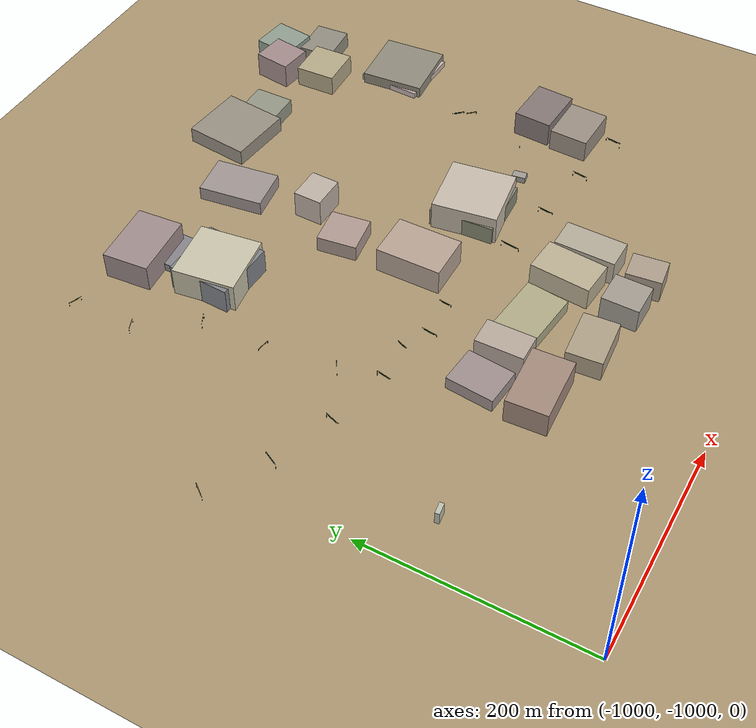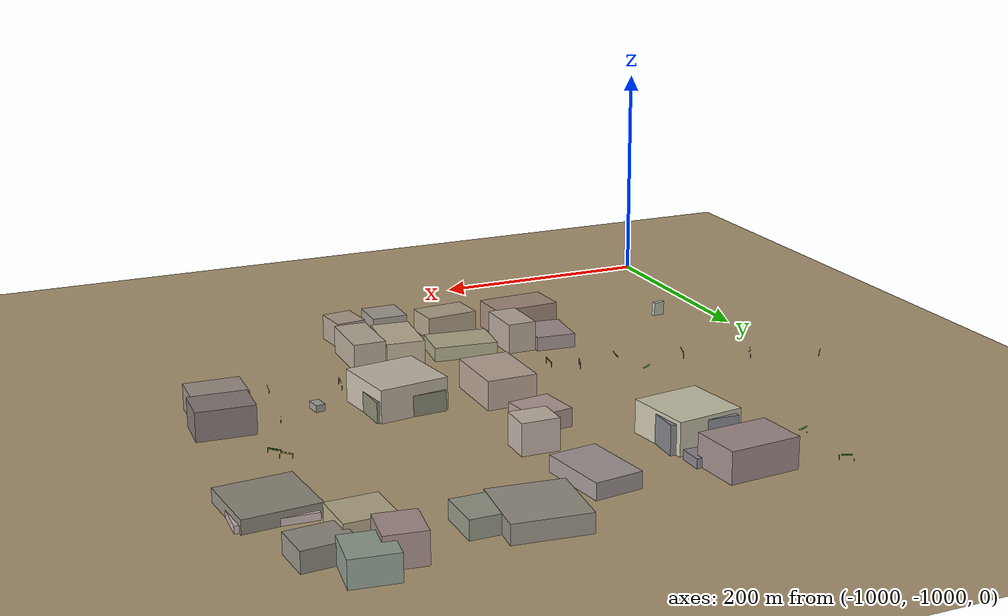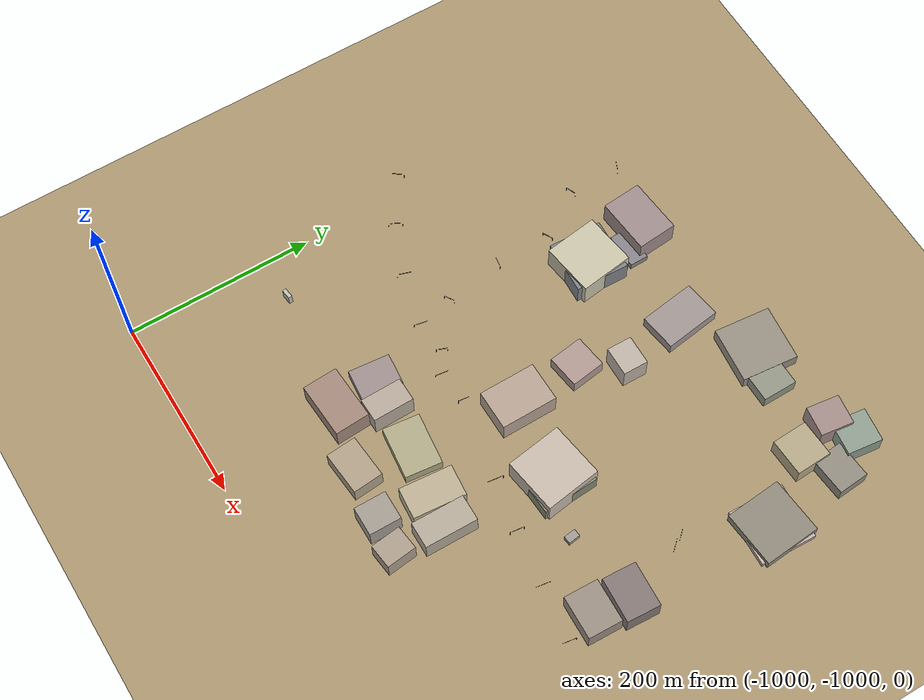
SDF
<sdf version="1.9">
 <world name="crossroad_world">
  <model name="ground_plane">
   <static>true</static>
   <pose>0 0 -0.05 0 0 0</pose>
   <link name="link">
    <collision name="collision">
     <geometry><plane><normal>0 0 1</normal><size>10000 10000</size></plane></geometry>
    </collision>
    <visual name="visual">
     <geometry><plane><normal>0 0 1</normal><size>15000 15000</size></plane></geometry>
     <material><ambient>0.68 0.60 0.45 1</ambient><diffuse>0.68 0.60 0.45 1</diffuse></material>
    </visual>
   </link>
  </model>
  <model name="tl_0">
   <static>true</static>
   <pose>-548.470 -724.925 0 0 0 4.614</pose>
   <link name="link">
    <visual name="pole">
     <pose>0 0 2.750 0 0 0</pose>
     <geometry><cylinder><radius>0.06</radius><length>5.50</length></cylinder></geometry>
     <material><ambient>0.25 0.25 0.25 1</ambient><diffuse>0.25 0.25 0.25 1</diffuse></material>
    </visual>
    <visual name="housing">
     <pose>0 0 5.950 0 0 0</pose>
     <geometry><box><size>0.33 0.33 0.9</size></box></geometry>
     <material><ambient>0.08 0.08 0.08 1</ambient><diffuse>0.08 0.08 0.08 1</diffuse></material>
    </visual>
    <visual name="red">
     <pose>0 0 6.250 0 0 0</pose>
     <geometry><sphere><radius>0.09</radius></sphere></geometry>
     <material>
      <ambient>0.90 0.05 0.05 1</ambient>
      <diffuse>0.90 0.05 0.05 1</diffuse>
      <emissive>0.6 0 0 1</emissive>
     </material>
    </visual>
    <visual name="amber">
     <pose>0 0 5.950 0 0 0</pose>
     <geometry><sphere><radius>0.09</radius></sphere></geometry>
     <material><ambient>0.90 0.55 0.00 1</ambient><diffuse>0.90 0.55 0.00 1</diffuse></material>
    </visual>
    <visual name="green">
     <pose>0 0 5.650 0 0 0</pose>
     <geometry><sphere><radius>0.09</radius></sphere></geometry>
     <material><ambient>0.00 0.78 0.00 1</ambient><diffuse>0.00 0.78 0.00 1</diffuse></material>
    </visual>
    <collision name="col">
     <pose>0 0 2.750 0 0 0</pose>
     <geometry><cylinder><radius>0.06</radius><length>5.50</length></cylinder></geometry>
    </collision>
   </link>
  </model>
  <model name="gantry_8">
   <static>true</static>
   <pose>-913.528 -734.026 0 0 0 4.386</pose>
   <link name="link">
    <visual name="post_l">
     <pose>-7.300 0 2.925 0 0 0</pose>
     <geometry><cylinder><radius>0.1</radius><length>5.85</length></cylinder></geometry>
     <material><ambient>0.30 0.30 0.35 1</ambient><diffuse>0.30 0.30 0.35 1</diffuse></material>
    </visual>
    <visual name="post_r">
     <pose>7.300 0 2.925 0 0 0</pose>
     <geometry><cylinder><radius>0.1</radius><length>5.85</length></cylinder></geometry>
     <material><ambient>0.30 0.30 0.35 1</ambient><diffuse>0.30 0.30 0.35 1</diffuse></material>
    </visual>
    <visual name="beam">
     <pose>0 0 6.000 0 0 0</pose>
     <geometry><box><size>14.600 0.22 0.22</size></box></geometry>
     <material><ambient>0.30 0.30 0.35 1</ambient><diffuse>0.30 0.30 0.35 1</diffuse></material>
    </visual>
    <visual name="sign_border">
     <pose>0 -0.14 5.450 0 0 0</pose>
     <geometry><box><size>10.592 0.04 0.92</size></box></geometry>
     <material><ambient>0.90 0.85 0.10 1</ambient><diffuse>0.90 0.85 0.10 1</diffuse></material>
    </visual>
    <visual name="sign_panel">
     <pose>0 -0.15 5.450 0 0 0</pose>
     <geometry><box><size>10.512 0.05 0.86</size></box></geometry>
     <material><ambient>0.05 0.38 0.10 1</ambient><diffuse>0.05 0.38 0.10 1</diffuse></material>
    </visual>
    <collision name="col_post_l">
     <pose>-7.300 0 2.925 0 0 0</pose>
     <geometry><cylinder><radius>0.1</radius><length>5.85</length></cylinder></geometry>
    </collision>
    <collision name="col_post_r">
     <pose>7.300 0 2.925 0 0 0</pose>
     <geometry><cylinder><radius>0.1</radius><length>5.85</length></cylinder></geometry>
    </collision>
    <collision name="col_beam">
     <pose>0 0 6.000 0 0 0</pose>
     <geometry><box><size>14.600 0.22 0.22</size></box></geometry>
    </collision>
   </link>
  </model>
  <model name="gantry_9">
   <static>true</static>
   <pose>-969.270 -712.010 0 0 0 4.232</pose>
   <link name="link">
    <visual name="post_l">
     <pose>-7.300 0 2.925 0 0 0</pose>
     <geometry><cylinder><radius>0.1</radius><length>5.85</length></cylinder></geometry>
     <material><ambient>0.30 0.30 0.35 1</ambient><diffuse>0.30 0.30 0.35 1</diffuse></material>
    </visual>
    <visual name="post_r">
     <pose>7.300 0 2.925 0 0 0</pose>
     <geometry><cylinder><radius>0.1</radius><length>5.85</length></cylinder></geometry>
     <material><ambient>0.30 0.30 0.35 1</ambient><diffuse>0.30 0.30 0.35 1</diffuse></material>
    </visual>
    <visual name="beam">
     <pose>0 0 6.000 0 0 0</pose>
     <geometry><box><size>14.600 0.22 0.22</size></box></geometry>
     <material><ambient>0.30 0.30 0.35 1</ambient><diffuse>0.30 0.30 0.35 1</diffuse></material>
    </visual>
    <visual name="sign_border">
     <pose>0 -0.14 5.450 0 0 0</pose>
     <geometry><box><size>10.592 0.04 0.92</size></box></geometry>
     <material><ambient>0.90 0.85 0.10 1</ambient><diffuse>0.90 0.85 0.10 1</diffuse></material>
    </visual>
    <visual name="sign_panel">
     <pose>0 -0.15 5.450 0 0 0</pose>
     <geometry><box><size>10.512 0.05 0.86</size></box></geometry>
     <material><ambient>0.05 0.38 0.10 1</ambient><diffuse>0.05 0.38 0.10 1</diffuse></material>
    </visual>
    <collision name="col_post_l">
     <pose>-7.300 0 2.925 0 0 0</pose>
     <geometry><cylinder><radius>0.1</radius><length>5.85</length></cylinder></geometry>
    </collision>
    <collision name="col_post_r">
     <pose>7.300 0 2.925 0 0 0</pose>
     <geometry><cylinder><radius>0.1</radius><length>5.85</length></cylinder></geometry>
    </collision>
    <collision name="col_beam">
     <pose>0 0 6.000 0 0 0</pose>
     <geometry><box><size>14.600 0.22 0.22</size></box></geometry>
    </collision>
   </link>
  </model>
  <model name="gantry_10">
   <static>true</static>
   <pose>-1020.344 -680.705 0 0 0 4.043</pose>
   <link name="link">
    <visual name="post_l">
     <pose>-7.300 0 2.925 0 0 0</pose>
     <geometry><cylinder><radius>0.1</radius><length>5.85</length></cylinder></geometry>
     <material><ambient>0.30 0.30 0.35 1</ambient><diffuse>0.30 0.30 0.35 1</diffuse></material>
    </visual>
    <visual name="post_r">
     <pose>7.300 0 2.925 0 0 0</pose>
     <geometry><cylinder><radius>0.1</radius><length>5.85</length></cylinder></geometry>
     <material><ambient>0.30 0.30 0.35 1</ambient><diffuse>0.30 0.30 0.35 1</diffuse></material>
    </visual>
    <visual name="beam">
     <pose>0 0 6.000 0 0 0</pose>
     <geometry><box><size>14.600 0.22 0.22</size></box></geometry>
     <material><ambient>0.30 0.30 0.35 1</ambient><diffuse>0.30 0.30 0.35 1</diffuse></material>
    </visual>
    <visual name="sign_border">
     <pose>0 -0.14 5.450 0 0 0</pose>
     <geometry><box><size>10.592 0.04 0.92</size></box></geometry>
     <material><ambient>0.90 0.85 0.10 1</ambient><diffuse>0.90 0.85 0.10 1</diffuse></material>
    </visual>
    <visual name="sign_panel">
     <pose>0 -0.15 5.450 0 0 0</pose>
     <geometry><box><size>10.512 0.05 0.86</size></box></geometry>
     <material><ambient>0.05 0.38 0.10 1</ambient><diffuse>0.05 0.38 0.10 1</diffuse></material>
    </visual>
    <collision name="col_post_l">
     <pose>-7.300 0 2.925 0 0 0</pose>
     <geometry><cylinder><radius>0.1</radius><length>5.85</length></cylinder></geometry>
    </collision>
    <collision name="col_post_r">
     <pose>7.300 0 2.925 0 0 0</pose>
     <geometry><cylinder><radius>0.1</radius><length>5.85</length></cylinder></geometry>
    </collision>
    <collision name="col_beam">
     <pose>0 0 6.000 0 0 0</pose>
     <geometry><box><size>14.600 0.22 0.22</size></box></geometry>
    </collision>
   </link>
  </model>
  <model name="gantry_11">
   <static>true</static>
   <pose>-855.269 -748.215 0 0 0 4.518</pose>
   <link name="link">
    <visual name="post_l">
     <pose>-7.300 0 2.925 0 0 0</pose>
     <geometry><cylinder><radius>0.1</radius><length>5.85</length></cylinder></geometry>
     <material><ambient>0.30 0.30 0.35 1</ambient><diffuse>0.30 0.30 0.35 1</diffuse></material>
    </visual>
    <visual name="post_r">
     <pose>7.300 0 2.925 0 0 0</pose>
     <geometry><cylinder><radius>0.1</radius><length>5.85</length></cylinder></geometry>
     <material><ambient>0.30 0.30 0.35 1</ambient><diffuse>0.30 0.30 0.35 1</diffuse></material>
    </visual>
    <visual name="beam">
     <pose>0 0 6.000 0 0 0</pose>
     <geometry><box><size>14.600 0.22 0.22</size></box></geometry>
     <material><ambient>0.30 0.30 0.35 1</ambient><diffuse>0.30 0.30 0.35 1</diffuse></material>
    </visual>
    <visual name="sign_border">
     <pose>0 -0.14 5.450 0 0 0</pose>
     <geometry><box><size>10.592 0.04 0.92</size></box></geometry>
     <material><ambient>0.90 0.85 0.10 1</ambient><diffuse>0.90 0.85 0.10 1</diffuse></material>
    </visual>
    <visual name="sign_panel">
     <pose>0 -0.15 5.450 0 0 0</pose>
     <geometry><box><size>10.512 0.05 0.86</size></box></geometry>
     <material><ambient>0.05 0.38 0.10 1</ambient><diffuse>0.05 0.38 0.10 1</diffuse></material>
    </visual>
    <collision name="col_post_l">
     <pose>-7.300 0 2.925 0 0 0</pose>
     <geometry><cylinder><radius>0.1</radius><length>5.85</length></cylinder></geometry>
    </collision>
    <collision name="col_post_r">
     <pose>7.300 0 2.925 0 0 0</pose>
     <geometry><cylinder><radius>0.1</radius><length>5.85</length></cylinder></geometry>
    </collision>
    <collision name="col_beam">
     <pose>0 0 6.000 0 0 0</pose>
     <geometry><box><size>14.600 0.22 0.22</size></box></geometry>
    </collision>
   </link>
  </model>
  <model name="gantry_12">
   <static>true</static>
   <pose>-796.123 -758.223 0 0 0 4.583</pose>
   <link name="link">
    <visual name="post_l">
     <pose>-7.300 0 2.925 0 0 0</pose>
     <geometry><cylinder><radius>0.1</radius><length>5.85</length></cylinder></geometry>
     <material><ambient>0.30 0.30 0.35 1</ambient><diffuse>0.30 0.30 0.35 1</diffuse></material>
    </visual>
    <visual name="post_r">
     <pose>7.300 0 2.925 0 0 0</pose>
     <geometry><cylinder><radius>0.1</radius><length>5.85</length></cylinder></geometry>
     <material><ambient>0.30 0.30 0.35 1</ambient><diffuse>0.30 0.30 0.35 1</diffuse></material>
    </visual>
    <visual name="beam">
     <pose>0 0 6.000 0 0 0</pose>
     <geometry><box><size>14.600 0.22 0.22</size></box></geometry>
     <material><ambient>0.30 0.30 0.35 1</ambient><diffuse>0.30 0.30 0.35 1</diffuse></material>
    </visual>
    <visual name="sign_border">
     <pose>0 -0.14 5.450 0 0 0</pose>
     <geometry><box><size>10.592 0.04 0.92</size></box></geometry>
     <material><ambient>0.90 0.85 0.10 1</ambient><diffuse>0.90 0.85 0.10 1</diffuse></material>
    </visual>
    <visual name="sign_panel">
     <pose>0 -0.15 5.450 0 0 0</pose>
     <geometry><box><size>10.512 0.05 0.86</size></box></geometry>
     <material><ambient>0.05 0.38 0.10 1</ambient><diffuse>0.05 0.38 0.10 1</diffuse></material>
    </visual>
    <collision name="col_post_l">
     <pose>-7.300 0 2.925 0 0 0</pose>
     <geometry><cylinder><radius>0.1</radius><length>5.85</length></cylinder></geometry>
    </collision>
    <collision name="col_post_r">
     <pose>7.300 0 2.925 0 0 0</pose>
     <geometry><cylinder><radius>0.1</radius><length>5.85</length></cylinder></geometry>
    </collision>
    <collision name="col_beam">
     <pose>0 0 6.000 0 0 0</pose>
     <geometry><box><size>14.600 0.22 0.22</size></box></geometry>
    </collision>
   </link>
  </model>
  <model name="gantry_15">
   <static>true</static>
   <pose>-819.336 -745.091 0 0 0 4.353</pose>
   <link name="link">
    <visual name="post_l">
     <pose>-5.700 0 2.925 0 0 0</pose>
     <geometry><cylinder><radius>0.1</radius><length>5.85</length></cylinder></geometry>
     <material><ambient>0.30 0.30 0.35 1</ambient><diffuse>0.30 0.30 0.35 1</diffuse></material>
    </visual>
    <visual name="post_r">
     <pose>5.700 0 2.925 0 0 0</pose>
     <geometry><cylinder><radius>0.1</radius><length>5.85</length></cylinder></geometry>
     <material><ambient>0.30 0.30 0.35 1</ambient><diffuse>0.30 0.30 0.35 1</diffuse></material>
    </visual>
    <visual name="beam">
     <pose>0 0 6.000 0 0 0</pose>
     <geometry><box><size>11.400 0.22 0.22</size></box></geometry>
     <material><ambient>0.30 0.30 0.35 1</ambient><diffuse>0.30 0.30 0.35 1</diffuse></material>
    </visual>
    <visual name="sign_border">
     <pose>0 -0.14 5.450 0 0 0</pose>
     <geometry><box><size>8.288 0.04 0.92</size></box></geometry>
     <material><ambient>0.90 0.85 0.10 1</ambient><diffuse>0.90 0.85 0.10 1</diffuse></material>
    </visual>
    <visual name="sign_panel">
     <pose>0 -0.15 5.450 0 0 0</pose>
     <geometry><box><size>8.208 0.05 0.86</size></box></geometry>
     <material><ambient>0.05 0.38 0.10 1</ambient><diffuse>0.05 0.38 0.10 1</diffuse></material>
    </visual>
    <collision name="col_post_l">
     <pose>-5.700 0 2.925 0 0 0</pose>
     <geometry><cylinder><radius>0.1</radius><length>5.85</length></cylinder></geometry>
    </collision>
    <collision name="col_post_r">
     <pose>5.700 0 2.925 0 0 0</pose>
     <geometry><cylinder><radius>0.1</radius><length>5.85</length></cylinder></geometry>
    </collision>
    <collision name="col_beam">
     <pose>0 0 6.000 0 0 0</pose>
     <geometry><box><size>11.400 0.22 0.22</size></box></geometry>
    </collision>
   </link>
  </model>
  <model name="gantry_16">
   <static>true</static>
   <pose>-864.959 -709.529 0 0 0 3.697</pose>
   <link name="link">
    <visual name="post_l">
     <pose>-5.700 0 2.925 0 0 0</pose>
     <geometry><cylinder><radius>0.1</radius><length>5.85</length></cylinder></geometry>
     <material><ambient>0.30 0.30 0.35 1</ambient><diffuse>0.30 0.30 0.35 1</diffuse></material>
    </visual>
    <visual name="post_r">
     <pose>5.700 0 2.925 0 0 0</pose>
     <geometry><cylinder><radius>0.1</radius><length>5.85</length></cylinder></geometry>
     <material><ambient>0.30 0.30 0.35 1</ambient><diffuse>0.30 0.30 0.35 1</diffuse></material>
    </visual>
    <visual name="beam">
     <pose>0 0 6.000 0 0 0</pose>
     <geometry><box><size>11.400 0.22 0.22</size></box></geometry>
     <material><ambient>0.30 0.30 0.35 1</ambient><diffuse>0.30 0.30 0.35 1</diffuse></material>
    </visual>
    <visual name="sign_border">
     <pose>0 -0.14 5.450 0 0 0</pose>
     <geometry><box><size>8.288 0.04 0.92</size></box></geometry>
     <material><ambient>0.90 0.85 0.10 1</ambient><diffuse>0.90 0.85 0.10 1</diffuse></material>
    </visual>
    <visual name="sign_panel">
     <pose>0 -0.15 5.450 0 0 0</pose>
     <geometry><box><size>8.208 0.05 0.86</size></box></geometry>
     <material><ambient>0.05 0.38 0.10 1</ambient><diffuse>0.05 0.38 0.10 1</diffuse></material>
    </visual>
    <collision name="col_post_l">
     <pose>-5.700 0 2.925 0 0 0</pose>
     <geometry><cylinder><radius>0.1</radius><length>5.85</length></cylinder></geometry>
    </collision>
    <collision name="col_post_r">
     <pose>5.700 0 2.925 0 0 0</pose>
     <geometry><cylinder><radius>0.1</radius><length>5.85</length></cylinder></geometry>
    </collision>
    <collision name="col_beam">
     <pose>0 0 6.000 0 0 0</pose>
     <geometry><box><size>11.400 0.22 0.22</size></box></geometry>
    </collision>
   </link>
  </model>
  <model name="gantry_17">
   <static>true</static>
   <pose>-760.744 -754.867 0 0 0 4.594</pose>
   <link name="link">
    <visual name="post_l">
     <pose>-5.700 0 2.925 0 0 0</pose>
     <geometry><cylinder><radius>0.1</radius><length>5.85</length></cylinder></geometry>
     <material><ambient>0.30 0.30 0.35 1</ambient><diffuse>0.30 0.30 0.35 1</diffuse></material>
    </visual>
    <visual name="post_r">
     <pose>5.700 0 2.925 0 0 0</pose>
     <geometry><cylinder><radius>0.1</radius><length>5.85</length></cylinder></geometry>
     <material><ambient>0.30 0.30 0.35 1</ambient><diffuse>0.30 0.30 0.35 1</diffuse></material>
    </visual>
    <visual name="beam">
     <pose>0 0 6.000 0 0 0</pose>
     <geometry><box><size>11.400 0.22 0.22</size></box></geometry>
     <material><ambient>0.30 0.30 0.35 1</ambient><diffuse>0.30 0.30 0.35 1</diffuse></material>
    </visual>
    <visual name="sign_border">
     <pose>0 -0.14 5.450 0 0 0</pose>
     <geometry><box><size>8.288 0.04 0.92</size></box></geometry>
     <material><ambient>0.90 0.85 0.10 1</ambient><diffuse>0.90 0.85 0.10 1</diffuse></material>
    </visual>
    <visual name="sign_panel">
     <pose>0 -0.15 5.450 0 0 0</pose>
     <geometry><box><size>8.208 0.05 0.86</size></box></geometry>
     <material><ambient>0.05 0.38 0.10 1</ambient><diffuse>0.05 0.38 0.10 1</diffuse></material>
    </visual>
    <collision name="col_post_l">
     <pose>-5.700 0 2.925 0 0 0</pose>
     <geometry><cylinder><radius>0.1</radius><length>5.85</length></cylinder></geometry>
    </collision>
    <collision name="col_post_r">
     <pose>5.700 0 2.925 0 0 0</pose>
     <geometry><cylinder><radius>0.1</radius><length>5.85</length></cylinder></geometry>
    </collision>
    <collision name="col_beam">
     <pose>0 0 6.000 0 0 0</pose>
     <geometry><box><size>11.400 0.22 0.22</size></box></geometry>
    </collision>
   </link>
  </model>
  <model name="gantry_18">
   <static>true</static>
   <pose>-908.334 -536.574 0 0 0 3.521</pose>
   <link name="link">
    <visual name="post_l">
     <pose>-5.700 0 2.925 0 0 0</pose>
     <geometry><cylinder><radius>0.1</radius><length>5.85</length></cylinder></geometry>
     <material><ambient>0.30 0.30 0.35 1</ambient><diffuse>0.30 0.30 0.35 1</diffuse></material>
    </visual>
    <visual name="post_r">
     <pose>5.700 0 2.925 0 0 0</pose>
     <geometry><cylinder><radius>0.1</radius><length>5.85</length></cylinder></geometry>
     <material><ambient>0.30 0.30 0.35 1</ambient><diffuse>0.30 0.30 0.35 1</diffuse></material>
    </visual>
    <visual name="beam">
     <pose>0 0 6.000 0 0 0</pose>
     <geometry><box><size>11.400 0.22 0.22</size></box></geometry>
     <material><ambient>0.30 0.30 0.35 1</ambient><diffuse>0.30 0.30 0.35 1</diffuse></material>
    </visual>
    <visual name="sign_border">
     <pose>0 -0.14 5.450 0 0 0</pose>
     <geometry><box><size>8.288 0.04 0.92</size></box></geometry>
     <material><ambient>0.90 0.85 0.10 1</ambient><diffuse>0.90 0.85 0.10 1</diffuse></material>
    </visual>
    <visual name="sign_panel">
     <pose>0 -0.15 5.450 0 0 0</pose>
     <geometry><box><size>8.208 0.05 0.86</size></box></geometry>
     <material><ambient>0.05 0.38 0.10 1</ambient><diffuse>0.05 0.38 0.10 1</diffuse></material>
    </visual>
    <collision name="col_post_l">
     <pose>-5.700 0 2.925 0 0 0</pose>
     <geometry><cylinder><radius>0.1</radius><length>5.85</length></cylinder></geometry>
    </collision>
    <collision name="col_post_r">
     <pose>5.700 0 2.925 0 0 0</pose>
     <geometry><cylinder><radius>0.1</radius><length>5.85</length></cylinder></geometry>
    </collision>
    <collision name="col_beam">
     <pose>0 0 6.000 0 0 0</pose>
     <geometry><box><size>11.400 0.22 0.22</size></box></geometry>
    </collision>
   </link>
  </model>
  <model name="gantry_19">
   <static>true</static>
   <pose>-908.919 -479.412 0 0 0 2.751</pose>
   <link name="link">
    <visual name="post_l">
     <pose>-5.700 0 2.925 0 0 0</pose>
     <geometry><cylinder><radius>0.1</radius><length>5.85</length></cylinder></geometry>
     <material><ambient>0.30 0.30 0.35 1</ambient><diffuse>0.30 0.30 0.35 1</diffuse></material>
    </visual>
    <visual name="post_r">
     <pose>5.700 0 2.925 0 0 0</pose>
     <geometry><cylinder><radius>0.1</radius><length>5.85</length></cylinder></geometry>
     <material><ambient>0.30 0.30 0.35 1</ambient><diffuse>0.30 0.30 0.35 1</diffuse></material>
    </visual>
    <visual name="beam">
     <pose>0 0 6.000 0 0 0</pose>
     <geometry><box><size>11.400 0.22 0.22</size></box></geometry>
     <material><ambient>0.30 0.30 0.35 1</ambient><diffuse>0.30 0.30 0.35 1</diffuse></material>
    </visual>
    <visual name="sign_border">
     <pose>0 -0.14 5.450 0 0 0</pose>
     <geometry><box><size>8.288 0.04 0.92</size></box></geometry>
     <material><ambient>0.90 0.85 0.10 1</ambient><diffuse>0.90 0.85 0.10 1</diffuse></material>
    </visual>
    <visual name="sign_panel">
     <pose>0 -0.15 5.450 0 0 0</pose>
     <geometry><box><size>8.208 0.05 0.86</size></box></geometry>
     <material><ambient>0.05 0.38 0.10 1</ambient><diffuse>0.05 0.38 0.10 1</diffuse></material>
    </visual>
    <collision name="col_post_l">
     <pose>-5.700 0 2.925 0 0 0</pose>
     <geometry><cylinder><radius>0.1</radius><length>5.85</length></cylinder></geometry>
    </collision>
    <collision name="col_post_r">
     <pose>5.700 0 2.925 0 0 0</pose>
     <geometry><cylinder><radius>0.1</radius><length>5.85</length></cylinder></geometry>
    </collision>
    <collision name="col_beam">
     <pose>0 0 6.000 0 0 0</pose>
     <geometry><box><size>11.400 0.22 0.22</size></box></geometry>
    </collision>
   </link>
  </model>
  <model name="gantry_21">
   <static>true</static>
   <pose>-874.985 -585.997 0 0 0 3.599</pose>
   <link name="link">
    <visual name="post_l">
     <pose>-5.700 0 2.925 0 0 0</pose>
     <geometry><cylinder><radius>0.1</radius><length>5.85</length></cylinder></geometry>
     <material><ambient>0.30 0.30 0.35 1</ambient><diffuse>0.30 0.30 0.35 1</diffuse></material>
    </visual>
    <visual name="post_r">
     <pose>5.700 0 2.925 0 0 0</pose>
     <geometry><cylinder><radius>0.1</radius><length>5.85</length></cylinder></geometry>
     <material><ambient>0.30 0.30 0.35 1</ambient><diffuse>0.30 0.30 0.35 1</diffuse></material>
    </visual>
    <visual name="beam">
     <pose>0 0 6.000 0 0 0</pose>
     <geometry><box><size>11.400 0.22 0.22</size></box></geometry>
     <material><ambient>0.30 0.30 0.35 1</ambient><diffuse>0.30 0.30 0.35 1</diffuse></material>
    </visual>
    <visual name="sign_border">
     <pose>0 -0.14 5.450 0 0 0</pose>
     <geometry><box><size>8.288 0.04 0.92</size></box></geometry>
     <material><ambient>0.90 0.85 0.10 1</ambient><diffuse>0.90 0.85 0.10 1</diffuse></material>
    </visual>
    <visual name="sign_panel">
     <pose>0 -0.15 5.450 0 0 0</pose>
     <geometry><box><size>8.208 0.05 0.86</size></box></geometry>
     <material><ambient>0.05 0.38 0.10 1</ambient><diffuse>0.05 0.38 0.10 1</diffuse></material>
    </visual>
    <collision name="col_post_l">
     <pose>-5.700 0 2.925 0 0 0</pose>
     <geometry><cylinder><radius>0.1</radius><length>5.85</length></cylinder></geometry>
    </collision>
    <collision name="col_post_r">
     <pose>5.700 0 2.925 0 0 0</pose>
     <geometry><cylinder><radius>0.1</radius><length>5.85</length></cylinder></geometry>
    </collision>
    <collision name="col_beam">
     <pose>0 0 6.000 0 0 0</pose>
     <geometry><box><size>11.400 0.22 0.22</size></box></geometry>
    </collision>
   </link>
  </model>
  <model name="gantry_22">
   <static>true</static>
   <pose>-875.183 -645.707 0 0 0 2.982</pose>
   <link name="link">
    <visual name="post_l">
     <pose>-5.700 0 2.925 0 0 0</pose>
     <geometry><cylinder><radius>0.1</radius><length>5.85</length></cylinder></geometry>
     <material><ambient>0.30 0.30 0.35 1</ambient><diffuse>0.30 0.30 0.35 1</diffuse></material>
    </visual>
    <visual name="post_r">
     <pose>5.700 0 2.925 0 0 0</pose>
     <geometry><cylinder><radius>0.1</radius><length>5.85</length></cylinder></geometry>
     <material><ambient>0.30 0.30 0.35 1</ambient><diffuse>0.30 0.30 0.35 1</diffuse></material>
    </visual>
    <visual name="beam">
     <pose>0 0 6.000 0 0 0</pose>
     <geometry><box><size>11.400 0.22 0.22</size></box></geometry>
     <material><ambient>0.30 0.30 0.35 1</ambient><diffuse>0.30 0.30 0.35 1</diffuse></material>
    </visual>
    <visual name="sign_border">
     <pose>0 -0.14 5.450 0 0 0</pose>
     <geometry><box><size>8.288 0.04 0.92</size></box></geometry>
     <material><ambient>0.90 0.85 0.10 1</ambient><diffuse>0.90 0.85 0.10 1</diffuse></material>
    </visual>
    <visual name="sign_panel">
     <pose>0 -0.15 5.450 0 0 0</pose>
     <geometry><box><size>8.208 0.05 0.86</size></box></geometry>
     <material><ambient>0.05 0.38 0.10 1</ambient><diffuse>0.05 0.38 0.10 1</diffuse></material>
    </visual>
    <collision name="col_post_l">
     <pose>-5.700 0 2.925 0 0 0</pose>
     <geometry><cylinder><radius>0.1</radius><length>5.85</length></cylinder></geometry>
    </collision>
    <collision name="col_post_r">
     <pose>5.700 0 2.925 0 0 0</pose>
     <geometry><cylinder><radius>0.1</radius><length>5.85</length></cylinder></geometry>
    </collision>
    <collision name="col_beam">
     <pose>0 0 6.000 0 0 0</pose>
     <geometry><box><size>11.400 0.22 0.22</size></box></geometry>
    </collision>
   </link>
  </model>
  <model name="gantry_51">
   <static>true</static>
   <pose>-531.166 -651.390 0 0 0 -0.824</pose>
   <link name="link">
    <visual name="post_l">
     <pose>-5.700 0 2.925 0 0 0</pose>
     <geometry><cylinder><radius>0.1</radius><length>5.85</length></cylinder></geometry>
     <material><ambient>0.30 0.30 0.35 1</ambient><diffuse>0.30 0.30 0.35 1</diffuse></material>
    </visual>
    <visual name="post_r">
     <pose>5.700 0 2.925 0 0 0</pose>
     <geometry><cylinder><radius>0.1</radius><length>5.85</length></cylinder></geometry>
     <material><ambient>0.30 0.30 0.35 1</ambient><diffuse>0.30 0.30 0.35 1</diffuse></material>
    </visual>
    <visual name="beam">
     <pose>0 0 6.000 0 0 0</pose>
     <geometry><box><size>11.400 0.22 0.22</size></box></geometry>
     <material><ambient>0.30 0.30 0.35 1</ambient><diffuse>0.30 0.30 0.35 1</diffuse></material>
    </visual>
    <visual name="sign_border">
     <pose>0 -0.14 5.450 0 0 0</pose>
     <geometry><box><size>8.288 0.04 0.92</size></box></geometry>
     <material><ambient>0.90 0.85 0.10 1</ambient><diffuse>0.90 0.85 0.10 1</diffuse></material>
    </visual>
    <visual name="sign_panel">
     <pose>0 -0.15 5.450 0 0 0</pose>
     <geometry><box><size>8.208 0.05 0.86</size></box></geometry>
     <material><ambient>0.05 0.38 0.10 1</ambient><diffuse>0.05 0.38 0.10 1</diffuse></material>
    </visual>
    <collision name="col_post_l">
     <pose>-5.700 0 2.925 0 0 0</pose>
     <geometry><cylinder><radius>0.1</radius><length>5.85</length></cylinder></geometry>
    </collision>
    <collision name="col_post_r">
     <pose>5.700 0 2.925 0 0 0</pose>
     <geometry><cylinder><radius>0.1</radius><length>5.85</length></cylinder></geometry>
    </collision>
    <collision name="col_beam">
     <pose>0 0 6.000 0 0 0</pose>
     <geometry><box><size>11.400 0.22 0.22</size></box></geometry>
    </collision>
   </link>
  </model>
  <model name="gantry_56">
   <static>true</static>
   <pose>-525.236 -661.891 0 0 0 2.315</pose>
   <link name="link">
    <visual name="post_l">
     <pose>-5.700 0 2.925 0 0 0</pose>
     <geometry><cylinder><radius>0.1</radius><length>5.85</length></cylinder></geometry>
     <material><ambient>0.30 0.30 0.35 1</ambient><diffuse>0.30 0.30 0.35 1</diffuse></material>
    </visual>
    <visual name="post_r">
     <pose>5.700 0 2.925 0 0 0</pose>
     <geometry><cylinder><radius>0.1</radius><length>5.85</length></cylinder></geometry>
     <material><ambient>0.30 0.30 0.35 1</ambient><diffuse>0.30 0.30 0.35 1</diffuse></material>
    </visual>
    <visual name="beam">
     <pose>0 0 6.000 0 0 0</pose>
     <geometry><box><size>11.400 0.22 0.22</size></box></geometry>
     <material><ambient>0.30 0.30 0.35 1</ambient><diffuse>0.30 0.30 0.35 1</diffuse></material>
    </visual>
    <visual name="sign_border">
     <pose>0 -0.14 5.450 0 0 0</pose>
     <geometry><box><size>8.288 0.04 0.92</size></box></geometry>
     <material><ambient>0.90 0.85 0.10 1</ambient><diffuse>0.90 0.85 0.10 1</diffuse></material>
    </visual>
    <visual name="sign_panel">
     <pose>0 -0.15 5.450 0 0 0</pose>
     <geometry><box><size>8.208 0.05 0.86</size></box></geometry>
     <material><ambient>0.05 0.38 0.10 1</ambient><diffuse>0.05 0.38 0.10 1</diffuse></material>
    </visual>
    <collision name="col_post_l">
     <pose>-5.700 0 2.925 0 0 0</pose>
     <geometry><cylinder><radius>0.1</radius><length>5.85</length></cylinder></geometry>
    </collision>
    <collision name="col_post_r">
     <pose>5.700 0 2.925 0 0 0</pose>
     <geometry><cylinder><radius>0.1</radius><length>5.85</length></cylinder></geometry>
    </collision>
    <collision name="col_beam">
     <pose>0 0 6.000 0 0 0</pose>
     <geometry><box><size>11.400 0.22 0.22</size></box></geometry>
    </collision>
   </link>
  </model>
  <model name="gantry_111">
   <static>true</static>
   <pose>-556.635 -790.196 0 0 0 4.571</pose>
   <link name="link">
    <visual name="post_l">
     <pose>-7.300 0 2.925 0 0 0</pose>
     <geometry><cylinder><radius>0.1</radius><length>5.85</length></cylinder></geometry>
     <material><ambient>0.30 0.30 0.35 1</ambient><diffuse>0.30 0.30 0.35 1</diffuse></material>
    </visual>
    <visual name="post_r">
     <pose>7.300 0 2.925 0 0 0</pose>
     <geometry><cylinder><radius>0.1</radius><length>5.85</length></cylinder></geometry>
     <material><ambient>0.30 0.30 0.35 1</ambient><diffuse>0.30 0.30 0.35 1</diffuse></material>
    </visual>
    <visual name="beam">
     <pose>0 0 6.000 0 0 0</pose>
     <geometry><box><size>14.600 0.22 0.22</size></box></geometry>
     <material><ambient>0.30 0.30 0.35 1</ambient><diffuse>0.30 0.30 0.35 1</diffuse></material>
    </visual>
    <visual name="sign_border">
     <pose>0 -0.14 5.450 0 0 0</pose>
     <geometry><box><size>10.592 0.04 0.92</size></box></geometry>
     <material><ambient>0.90 0.85 0.10 1</ambient><diffuse>0.90 0.85 0.10 1</diffuse></material>
    </visual>
    <visual name="sign_panel">
     <pose>0 -0.15 5.450 0 0 0</pose>
     <geometry><box><size>10.512 0.05 0.86</size></box></geometry>
     <material><ambient>0.05 0.38 0.10 1</ambient><diffuse>0.05 0.38 0.10 1</diffuse></material>
    </visual>
    <collision name="col_post_l">
     <pose>-7.300 0 2.925 0 0 0</pose>
     <geometry><cylinder><radius>0.1</radius><length>5.85</length></cylinder></geometry>
    </collision>
    <collision name="col_post_r">
     <pose>7.300 0 2.925 0 0 0</pose>
     <geometry><cylinder><radius>0.1</radius><length>5.85</length></cylinder></geometry>
    </collision>
    <collision name="col_beam">
     <pose>0 0 6.000 0 0 0</pose>
     <geometry><box><size>14.600 0.22 0.22</size></box></geometry>
    </collision>
   </link>
  </model>
  <model name="gantry_112">
   <static>true</static>
   <pose>-616.089 -782.119 0 0 0 4.579</pose>
   <link name="link">
    <visual name="post_l">
     <pose>-7.300 0 2.925 0 0 0</pose>
     <geometry><cylinder><radius>0.1</radius><length>5.85</length></cylinder></geometry>
     <material><ambient>0.30 0.30 0.35 1</ambient><diffuse>0.30 0.30 0.35 1</diffuse></material>
    </visual>
    <visual name="post_r">
     <pose>7.300 0 2.925 0 0 0</pose>
     <geometry><cylinder><radius>0.1</radius><length>5.85</length></cylinder></geometry>
     <material><ambient>0.30 0.30 0.35 1</ambient><diffuse>0.30 0.30 0.35 1</diffuse></material>
    </visual>
    <visual name="beam">
     <pose>0 0 6.000 0 0 0</pose>
     <geometry><box><size>14.600 0.22 0.22</size></box></geometry>
     <material><ambient>0.30 0.30 0.35 1</ambient><diffuse>0.30 0.30 0.35 1</diffuse></material>
    </visual>
    <visual name="sign_border">
     <pose>0 -0.14 5.450 0 0 0</pose>
     <geometry><box><size>10.592 0.04 0.92</size></box></geometry>
     <material><ambient>0.90 0.85 0.10 1</ambient><diffuse>0.90 0.85 0.10 1</diffuse></material>
    </visual>
    <visual name="sign_panel">
     <pose>0 -0.15 5.450 0 0 0</pose>
     <geometry><box><size>10.512 0.05 0.86</size></box></geometry>
     <material><ambient>0.05 0.38 0.10 1</ambient><diffuse>0.05 0.38 0.10 1</diffuse></material>
    </visual>
    <collision name="col_post_l">
     <pose>-7.300 0 2.925 0 0 0</pose>
     <geometry><cylinder><radius>0.1</radius><length>5.85</length></cylinder></geometry>
    </collision>
    <collision name="col_post_r">
     <pose>7.300 0 2.925 0 0 0</pose>
     <geometry><cylinder><radius>0.1</radius><length>5.85</length></cylinder></geometry>
    </collision>
    <collision name="col_beam">
     <pose>0 0 6.000 0 0 0</pose>
     <geometry><box><size>14.600 0.22 0.22</size></box></geometry>
    </collision>
   </link>
  </model>
  <model name="gantry_113">
   <static>true</static>
   <pose>-497.234 -798.650 0 0 0 4.571</pose>
   <link name="link">
    <visual name="post_l">
     <pose>-7.300 0 2.925 0 0 0</pose>
     <geometry><cylinder><radius>0.1</radius><length>5.85</length></cylinder></geometry>
     <material><ambient>0.30 0.30 0.35 1</ambient><diffuse>0.30 0.30 0.35 1</diffuse></material>
    </visual>
    <visual name="post_r">
     <pose>7.300 0 2.925 0 0 0</pose>
     <geometry><cylinder><radius>0.1</radius><length>5.85</length></cylinder></geometry>
     <material><ambient>0.30 0.30 0.35 1</ambient><diffuse>0.30 0.30 0.35 1</diffuse></material>
    </visual>
    <visual name="beam">
     <pose>0 0 6.000 0 0 0</pose>
     <geometry><box><size>14.600 0.22 0.22</size></box></geometry>
     <material><ambient>0.30 0.30 0.35 1</ambient><diffuse>0.30 0.30 0.35 1</diffuse></material>
    </visual>
    <visual name="sign_border">
     <pose>0 -0.14 5.450 0 0 0</pose>
     <geometry><box><size>10.592 0.04 0.92</size></box></geometry>
     <material><ambient>0.90 0.85 0.10 1</ambient><diffuse>0.90 0.85 0.10 1</diffuse></material>
    </visual>
    <visual name="sign_panel">
     <pose>0 -0.15 5.450 0 0 0</pose>
     <geometry><box><size>10.512 0.05 0.86</size></box></geometry>
     <material><ambient>0.05 0.38 0.10 1</ambient><diffuse>0.05 0.38 0.10 1</diffuse></material>
    </visual>
    <collision name="col_post_l">
     <pose>-7.300 0 2.925 0 0 0</pose>
     <geometry><cylinder><radius>0.1</radius><length>5.85</length></cylinder></geometry>
    </collision>
    <collision name="col_post_r">
     <pose>7.300 0 2.925 0 0 0</pose>
     <geometry><cylinder><radius>0.1</radius><length>5.85</length></cylinder></geometry>
    </collision>
    <collision name="col_beam">
     <pose>0 0 6.000 0 0 0</pose>
     <geometry><box><size>14.600 0.22 0.22</size></box></geometry>
    </collision>
   </link>
  </model>
  <model name="gantry_114">
   <static>true</static>
   <pose>-671.698 -773.069 0 0 0 4.580</pose>
   <link name="link">
    <visual name="post_l">
     <pose>-8.900 0 2.925 0 0 0</pose>
     <geometry><cylinder><radius>0.1</radius><length>5.85</length></cylinder></geometry>
     <material><ambient>0.30 0.30 0.35 1</ambient><diffuse>0.30 0.30 0.35 1</diffuse></material>
    </visual>
    <visual name="post_r">
     <pose>8.900 0 2.925 0 0 0</pose>
     <geometry><cylinder><radius>0.1</radius><length>5.85</length></cylinder></geometry>
     <material><ambient>0.30 0.30 0.35 1</ambient><diffuse>0.30 0.30 0.35 1</diffuse></material>
    </visual>
    <visual name="beam">
     <pose>0 0 6.000 0 0 0</pose>
     <geometry><box><size>17.800 0.22 0.22</size></box></geometry>
     <material><ambient>0.30 0.30 0.35 1</ambient><diffuse>0.30 0.30 0.35 1</diffuse></material>
    </visual>
    <visual name="sign_border">
     <pose>0 -0.14 5.450 0 0 0</pose>
     <geometry><box><size>12.896 0.04 0.92</size></box></geometry>
     <material><ambient>0.90 0.85 0.10 1</ambient><diffuse>0.90 0.85 0.10 1</diffuse></material>
    </visual>
    <visual name="sign_panel">
     <pose>0 -0.15 5.450 0 0 0</pose>
     <geometry><box><size>12.816 0.05 0.86</size></box></geometry>
     <material><ambient>0.05 0.38 0.10 1</ambient><diffuse>0.05 0.38 0.10 1</diffuse></material>
    </visual>
    <collision name="col_post_l">
     <pose>-8.900 0 2.925 0 0 0</pose>
     <geometry><cylinder><radius>0.1</radius><length>5.85</length></cylinder></geometry>
    </collision>
    <collision name="col_post_r">
     <pose>8.900 0 2.925 0 0 0</pose>
     <geometry><cylinder><radius>0.1</radius><length>5.85</length></cylinder></geometry>
    </collision>
    <collision name="col_beam">
     <pose>0 0 6.000 0 0 0</pose>
     <geometry><box><size>17.800 0.22 0.22</size></box></geometry>
    </collision>
   </link>
  </model>
  <model name="building_226">
   <static>true</static>
   <pose>-553.159 -465.575 12.452 0 0 -0.135</pose>
   <link name="link">
    <visual name="body">
     <geometry><box><size>31.74 34.97 24.90</size></box></geometry>
     <material><ambient>0.65 0.56 0.55 1</ambient><diffuse>0.65 0.56 0.55 1</diffuse></material>
    </visual>
    <collision name="col"><geometry><box><size>31.74 34.97 24.90</size></box></geometry></collision>
   </link>
  </model>
  <model name="building_254">
   <static>true</static>
   <pose>-507.913 -766.445 10.825 0 0 -0.036</pose>
   <link name="link">
    <visual name="body">
     <geometry><box><size>46.08 36.19 21.65</size></box></geometry>
     <material><ambient>0.62 0.57 0.52 1</ambient><diffuse>0.62 0.57 0.52 1</diffuse></material>
    </visual>
    <collision name="col"><geometry><box><size>46.08 36.19 21.65</size></box></geometry></collision>
   </link>
  </model>
  <model name="building_259">
   <static>true</static>
   <pose>-708.785 -598.204 13.278 0 0 -0.017</pose>
   <link name="link">
    <visual name="body">
     <geometry><box><size>31.45 26.55 26.56</size></box></geometry>
     <material><ambient>0.76 0.71 0.66 1</ambient><diffuse>0.76 0.71 0.66 1</diffuse></material>
    </visual>
    <collision name="col"><geometry><box><size>31.45 26.55 26.56</size></box></geometry></collision>
   </link>
  </model>
  <model name="building_260">
   <static>true</static>
   <pose>-644.956 -724.038 8.765 0 0 0.059</pose>
   <link name="link">
    <visual name="body">
     <geometry><box><size>60.00 60.00 17.53</size></box></geometry>
     <material><ambient>0.54 0.55 0.46 1</ambient><diffuse>0.54 0.55 0.46 1</diffuse></material>
    </visual>
    <collision name="col"><geometry><box><size>60.00 60.00 17.53</size></box></geometry></collision>
   </link>
  </model>
  <model name="building_261">
   <static>true</static>
   <pose>-644.956 -724.038 13.853 0 0 0.146</pose>
   <link name="link">
    <visual name="body">
     <geometry><box><size>60.00 60.00 27.71</size></box></geometry>
     <material><ambient>0.79 0.74 0.68 1</ambient><diffuse>0.79 0.74 0.68 1</diffuse></material>
    </visual>
    <collision name="col"><geometry><box><size>60.00 60.00 27.71</size></box></geometry></collision>
   </link>
  </model>
  <model name="building_262">
   <static>true</static>
   <pose>-815.572 -866.223 12.410 0 0 0.057</pose>
   <link name="link">
    <visual name="body">
     <geometry><box><size>60.00 37.16 24.82</size></box></geometry>
     <material><ambient>0.65 0.55 0.49 1</ambient><diffuse>0.65 0.55 0.49 1</diffuse></material>
    </visual>
    <collision name="col"><geometry><box><size>60.00 37.16 24.82</size></box></geometry></collision>
   </link>
  </model>
  <model name="building_263">
   <static>true</static>
   <pose>-790.221 -823.509 13.253 0 0 0.015</pose>
   <link name="link">
    <visual name="body">
     <geometry><box><size>25.70 43.61 26.51</size></box></geometry>
     <material><ambient>0.73 0.67 0.62 1</ambient><diffuse>0.73 0.67 0.62 1</diffuse></material>
    </visual>
    <collision name="col"><geometry><box><size>25.70 43.61 26.51</size></box></geometry></collision>
   </link>
  </model>
  <model name="building_264">
   <static>true</static>
   <pose>-749.574 -883.343 10.029 0 0 0.083</pose>
   <link name="link">
    <visual name="body">
     <geometry><box><size>47.11 32.17 20.06</size></box></geometry>
     <material><ambient>0.70 0.64 0.54 1</ambient><diffuse>0.70 0.64 0.54 1</diffuse></material>
    </visual>
    <collision name="col"><geometry><box><size>47.11 32.17 20.06</size></box></geometry></collision>
   </link>
  </model>
  <model name="building_265">
   <static>true</static>
   <pose>-653.144 -839.973 12.018 0 0 -0.014</pose>
   <link name="link">
    <visual name="body">
     <geometry><box><size>28.31 56.17 24.04</size></box></geometry>
     <material><ambient>0.72 0.68 0.61 1</ambient><diffuse>0.72 0.68 0.61 1</diffuse></material>
    </visual>
    <collision name="col"><geometry><box><size>28.31 56.17 24.04</size></box></geometry></collision>
   </link>
  </model>
  <model name="building_266">
   <static>true</static>
   <pose>-505.506 -486.167 8.097 0 0 0.078</pose>
   <link name="link">
    <visual name="body">
     <geometry><box><size>40.47 32.60 16.19</size></box></geometry>
     <material><ambient>0.58 0.56 0.51 1</ambient><diffuse>0.58 0.56 0.51 1</diffuse></material>
    </visual>
    <collision name="col"><geometry><box><size>40.47 32.60 16.19</size></box></geometry></collision>
   </link>
  </model>
  <model name="building_341">
   <static>true</static>
   <pose>-951.736 -847.762 6.124 0 0 0.123</pose>
   <link name="link">
    <visual name="body">
     <geometry><box><size>10.57 4.08 12.25</size></box></geometry>
     <material><ambient>0.76 0.77 0.70 1</ambient><diffuse>0.76 0.77 0.70 1</diffuse></material>
    </visual>
    <collision name="col"><geometry><box><size>10.57 4.08 12.25</size></box></geometry></collision>
   </link>
  </model>
  <model name="building_365">
   <static>true</static>
   <pose>-494.515 -571.998 2.906 0 0 -0.045</pose>
   <link name="link">
    <visual name="body">
     <geometry><box><size>60.00 60.00 5.81</size></box></geometry>
     <material><ambient>0.78 0.71 0.69 1</ambient><diffuse>0.78 0.71 0.69 1</diffuse></material>
    </visual>
    <collision name="col"><geometry><box><size>60.00 60.00 5.81</size></box></geometry></collision>
   </link>
  </model>
  <model name="building_395">
   <static>true</static>
   <pose>-728.135 -712.252 12.484 0 0 0.007</pose>
   <link name="link">
    <visual name="body">
     <geometry><box><size>42.98 60.00 24.97</size></box></geometry>
     <material><ambient>0.73 0.65 0.59 1</ambient><diffuse>0.73 0.65 0.59 1</diffuse></material>
    </visual>
    <collision name="col"><geometry><box><size>42.98 60.00 24.97</size></box></geometry></collision>
   </link>
  </model>
  <model name="building_396">
   <static>true</static>
   <pose>-819.524 -522.866 3.933 0 0 0.014</pose>
   <link name="link">
    <visual name="body">
     <geometry><box><size>37.95 19.86 7.87</size></box></geometry>
     <material><ambient>0.54 0.53 0.55 1</ambient><diffuse>0.54 0.53 0.55 1</diffuse></material>
    </visual>
    <collision name="col"><geometry><box><size>37.95 19.86 7.87</size></box></geometry></collision>
   </link>
  </model>
  <model name="building_399">
   <static>true</static>
   <pose>-583.462 -741.204 2.934 0 0 0.135</pose>
   <link name="link">
    <visual name="body">
     <geometry><box><size>8.03 12.68 5.87</size></box></geometry>
     <material><ambient>0.64 0.62 0.59 1</ambient><diffuse>0.64 0.62 0.59 1</diffuse></material>
    </visual>
    <collision name="col"><geometry><box><size>8.03 12.68 5.87</size></box></geometry></collision>
   </link>
  </model>
  <model name="building_441">
   <static>true</static>
   <pose>-656.420 -893.578 11.224 0 0 0.116</pose>
   <link name="link">
    <visual name="body">
     <geometry><box><size>26.36 32.04 22.45</size></box></geometry>
     <material><ambient>0.69 0.63 0.56 1</ambient><diffuse>0.69 0.63 0.56 1</diffuse></material>
    </visual>
    <collision name="col"><geometry><box><size>26.36 32.04 22.45</size></box></geometry></collision>
   </link>
  </model>
  <model name="building_442">
   <static>true</static>
   <pose>-823.254 -818.288 6.231 0 0 -0.095</pose>
   <link name="link">
    <visual name="body">
     <geometry><box><size>35.23 43.68 12.46</size></box></geometry>
     <material><ambient>0.63 0.57 0.56 1</ambient><diffuse>0.63 0.57 0.56 1</diffuse></material>
    </visual>
    <collision name="col"><geometry><box><size>35.23 43.68 12.46</size></box></geometry></collision>
   </link>
  </model>
  <model name="building_449">
   <static>true</static>
   <pose>-741.074 -824.585 6.169 0 0 -0.114</pose>
   <link name="link">
    <visual name="body">
     <geometry><box><size>56.35 39.05 12.34</size></box></geometry>
     <material><ambient>0.70 0.68 0.54 1</ambient><diffuse>0.70 0.68 0.54 1</diffuse></material>
    </visual>
    <collision name="col"><geometry><box><size>56.35 39.05 12.34</size></box></geometry></collision>
   </link>
  </model>
  <model name="building_450">
   <static>true</static>
   <pose>-693.227 -889.740 11.994 0 0 -0.011</pose>
   <link name="link">
    <visual name="body">
     <geometry><box><size>31.36 33.99 23.99</size></box></geometry>
     <material><ambient>0.65 0.62 0.58 1</ambient><diffuse>0.65 0.62 0.58 1</diffuse></material>
    </visual>
    <collision name="col"><geometry><box><size>31.36 33.99 23.99</size></box></geometry></collision>
   </link>
  </model>
  <model name="building_451">
   <static>true</static>
   <pose>-685.739 -833.883 11.082 0 0 -0.088</pose>
   <link name="link">
    <visual name="body">
     <geometry><box><size>33.92 55.84 22.16</size></box></geometry>
     <material><ambient>0.75 0.70 0.59 1</ambient><diffuse>0.75 0.70 0.59 1</diffuse></material>
    </visual>
    <collision name="col"><geometry><box><size>33.92 55.84 22.16</size></box></geometry></collision>
   </link>
  </model>
  <model name="building_474">
   <static>true</static>
   <pose>-527.088 -451.955 10.395 0 0 -0.125</pose>
   <link name="link">
    <visual name="body">
     <geometry><box><size>36.05 37.29 20.79</size></box></geometry>
     <material><ambient>0.57 0.63 0.57 1</ambient><diffuse>0.57 0.63 0.57 1</diffuse></material>
    </visual>
    <collision name="col"><geometry><box><size>36.05 37.29 20.79</size></box></geometry></collision>
   </link>
  </model>
  <model name="building_478">
   <static>true</static>
   <pose>-621.228 -487.799 7.638 0 0 0.008</pose>
   <link name="link">
    <visual name="body">
     <geometry><box><size>37.14 36.69 15.28</size></box></geometry>
     <material><ambient>0.59 0.60 0.53 1</ambient><diffuse>0.59 0.60 0.53 1</diffuse></material>
    </visual>
    <collision name="col"><geometry><box><size>37.14 36.69 15.28</size></box></geometry></collision>
   </link>
  </model>
  <model name="building_479">
   <static>true</static>
   <pose>-723.821 -524.723 6.758 0 0 0.139</pose>
   <link name="link">
    <visual name="body">
     <geometry><box><size>39.98 60.00 13.52</size></box></geometry>
     <material><ambient>0.64 0.60 0.59 1</ambient><diffuse>0.64 0.60 0.59 1</diffuse></material>
    </visual>
    <collision name="col"><geometry><box><size>39.98 60.00 13.52</size></box></geometry></collision>
   </link>
  </model>
  <model name="building_480">
   <static>true</static>
   <pose>-733.694 -640.710 7.737 0 0 0.136</pose>
   <link name="link">
    <visual name="body">
     <geometry><box><size>35.59 36.69 15.47</size></box></geometry>
     <material><ambient>0.70 0.61 0.58 1</ambient><diffuse>0.70 0.61 0.58 1</diffuse></material>
    </visual>
    <collision name="col"><geometry><box><size>35.59 36.69 15.47</size></box></geometry></collision>
   </link>
  </model>
  <model name="building_481">
   <static>true</static>
   <pose>-540.609 -507.045 10.049 0 0 0.043</pose>
   <link name="link">
    <visual name="body">
     <geometry><box><size>39.69 37.97 20.10</size></box></geometry>
     <material><ambient>0.72 0.67 0.54 1</ambient><diffuse>0.72 0.67 0.54 1</diffuse></material>
    </visual>
    <collision name="col"><geometry><box><size>39.69 37.97 20.10</size></box></geometry></collision>
   </link>
  </model>
  <model name="building_484">
   <static>true</static>
   <pose>-502.581 -727.992 12.131 0 0 -0.058</pose>
   <link name="link">
    <visual name="body">
     <geometry><box><size>47.78 35.63 24.26</size></box></geometry>
     <material><ambient>0.53 0.48 0.47 1</ambient><diffuse>0.53 0.48 0.47 1</diffuse></material>
    </visual>
    <collision name="col"><geometry><box><size>47.78 35.63 24.26</size></box></geometry></collision>
   </link>
  </model>
  <model name="building_604">
   <static>true</static>
   <pose>-824.715 -569.165 12.191 0 0 -0.045</pose>
   <link name="link">
    <visual name="body">
     <geometry><box><size>57.28 57.39 24.38</size></box></geometry>
     <material><ambient>0.52 0.53 0.55 1</ambient><diffuse>0.52 0.53 0.55 1</diffuse></material>
    </visual>
    <collision name="col"><geometry><box><size>57.28 57.39 24.38</size></box></geometry></collision>
   </link>
  </model>
  <model name="building_605">
   <static>true</static>
   <pose>-824.715 -569.165 13.791 0 0 0.137</pose>
   <link name="link">
    <visual name="body">
     <geometry><box><size>57.28 57.39 27.58</size></box></geometry>
     <material><ambient>0.80 0.78 0.68 1</ambient><diffuse>0.80 0.78 0.68 1</diffuse></material>
    </visual>
    <collision name="col"><geometry><box><size>57.28 57.39 27.58</size></box></geometry></collision>
   </link>
  </model>
  <model name="building_606">
   <static>true</static>
   <pose>-836.593 -500.343 12.929 0 0 0.085</pose>
   <link name="link">
    <visual name="body">
     <geometry><box><size>60.00 42.47 25.86</size></box></geometry>
     <material><ambient>0.64 0.56 0.56 1</ambient><diffuse>0.64 0.56 0.56 1</diffuse></material>
    </visual>
    <collision name="col"><geometry><box><size>60.00 42.47 25.86</size></box></geometry></collision>
   </link>
  </model>
  <model name="building_676">
   <static>true</static>
   <pose>-657.610 -478.442 7.745 0 0 -0.104</pose>
   <link name="link">
    <visual name="body">
     <geometry><box><size>60.00 60.00 15.49</size></box></geometry>
     <material><ambient>0.60 0.57 0.52 1</ambient><diffuse>0.60 0.57 0.52 1</diffuse></material>
    </visual>
    <collision name="col"><geometry><box><size>60.00 60.00 15.49</size></box></geometry></collision>
   </link>
  </model>
  <model name="building_718">
   <static>true</static>
   <pose>-494.515 -571.998 5.538 0 0 0.082</pose>
   <link name="link">
    <visual name="body">
     <geometry><box><size>60.00 60.00 11.08</size></box></geometry>
     <material><ambient>0.57 0.55 0.49 1</ambient><diffuse>0.57 0.55 0.49 1</diffuse></material>
    </visual>
    <collision name="col"><geometry><box><size>60.00 60.00 11.08</size></box></geometry></collision>
   </link>
  </model>
 </world>
</sdf>
